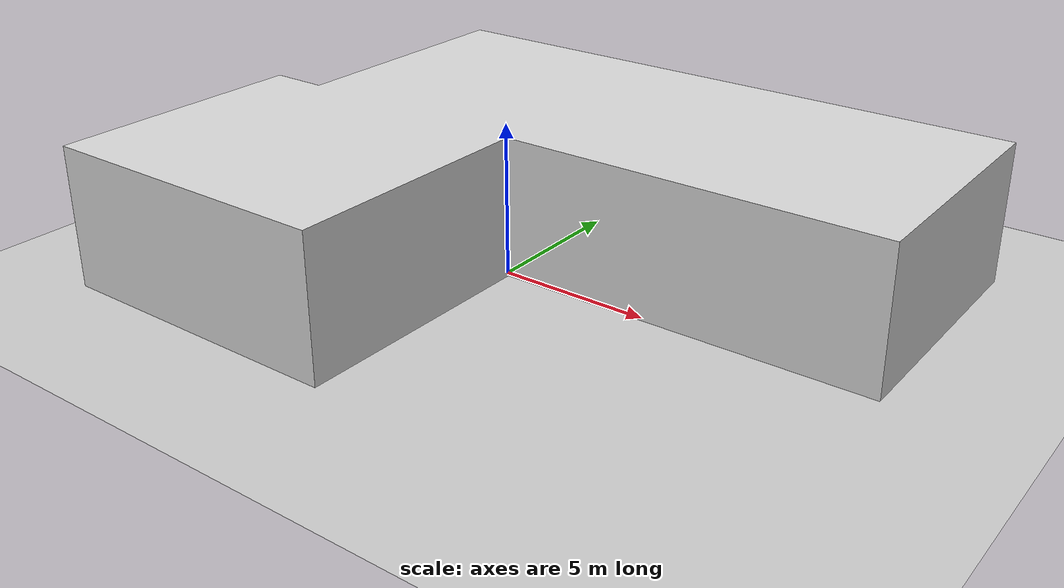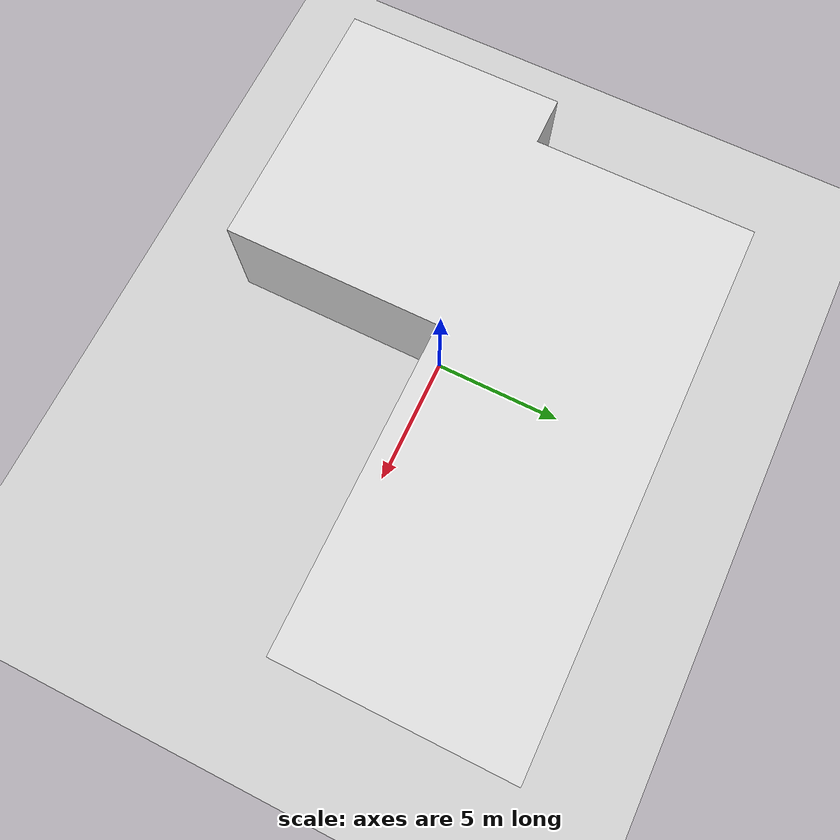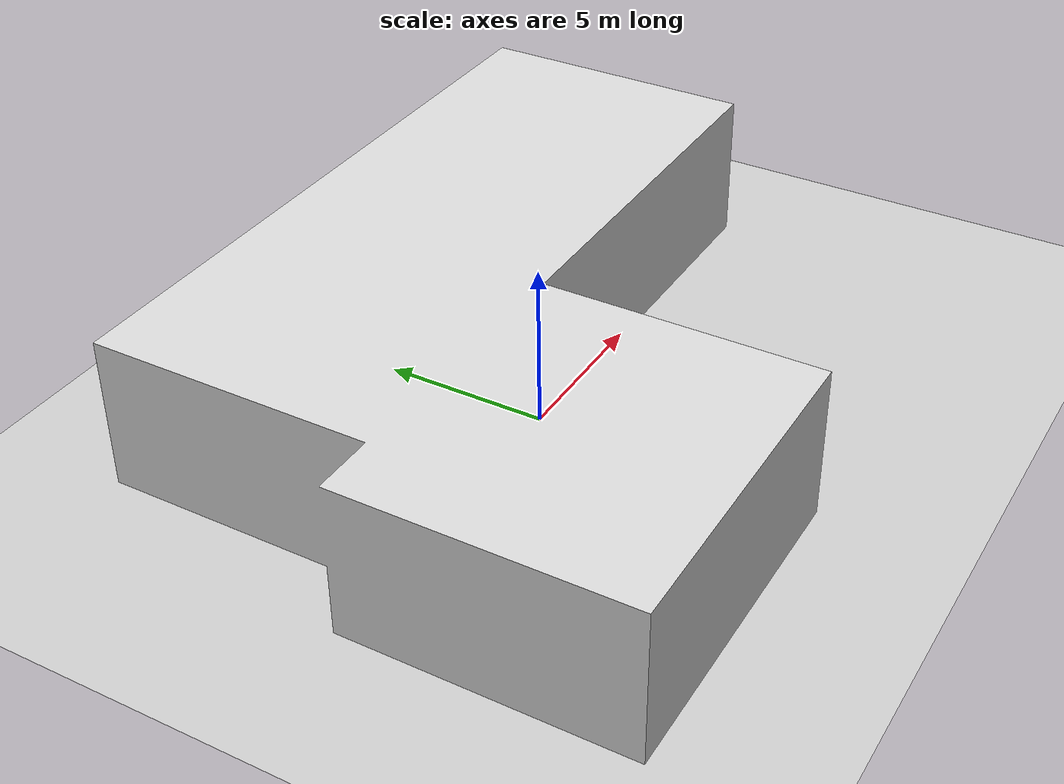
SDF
<sdf version="1.6">
 <world name="default">
  <light name="sun" type="directional">
   <pose>0 0 10 0 -0 0</pose>
   <diffuse>0.8 0.8 0.8 1</diffuse>
   <specular>0.2 0.2 0.2 1</specular>
   <attenuation>
    <range>1000</range>
    <constant>0.9</constant>
    <linear>0.01</linear>
    <quadratic>0.001</quadratic>
   </attenuation>
   <direction>-0.5 0.1 -0.9</direction>
   <spot><inner_angle>0</inner_angle><outer_angle>0</outer_angle><falloff>0</falloff></spot>
  </light>
  <model name="ground_plane">
   <static>1</static>
   <link name="link">
    <collision name="collision">
     <geometry><plane><normal>0 0 1</normal><size>100 100</size></plane></geometry>
     <surface>
      <contact><collide_bitmask>65535</collide_bitmask></contact>
      <friction><ode><mu>100</mu><mu2>50</mu2></ode></friction>
     </surface>
    </collision>
    <visual name="visual">
     <cast_shadows>0</cast_shadows>
     <geometry><plane><normal>0 0 1</normal><size>100 100</size></plane></geometry>
     <material>
      <script><uri>file://media/materials/scripts/gazebo.material</uri><name>Gazebo/Grey</name></script>
     </material>
    </visual>
   </link>
  </model>
  <gravity>0 0 -9.8</gravity>
  <magnetic_field>6e-06 2.3e-05 -4.2e-05</magnetic_field>
  <atmosphere type="adiabatic"/>
  <physics type="ode">
   <max_step_size>0.001</max_step_size>
   <real_time_factor>1</real_time_factor>
   <real_time_update_rate>1000</real_time_update_rate>
  </physics>
  <scene><ambient>0.4 0.4 0.4 1</ambient><background>0.7 0.7 0.7 1</background><shadows>1</shadows></scene>
  <spherical_coordinates>
   <surface_model>EARTH_WGS84</surface_model>
   <latitude_deg>0</latitude_deg>
   <longitude_deg>0</longitude_deg>
   <elevation>0</elevation>
   <heading_deg>0</heading_deg>
  </spherical_coordinates>
  <model name="FAR">
   <static>1</static>
   <link name="FAR">
    <collision name="lab_collision">
     <geometry><mesh><uri>model://FAR/meshes/FAR.stl</uri></mesh></geometry>
    </collision>
    <visual name="lab_visual">
     <geometry><mesh><uri>model://FAR/meshes/FAR.dae</uri></mesh></geometry>
     <material><script><uri>model://FAR/materials/materials.sdf</uri><name>LabMaterial</name></script></material>
    </visual>
   </link>
  </model>
  <model name="Obstacal">
   <static>1</static>
   <link name="base_link">
    <inertial>
     <pose>0.26 0.26 0.41 0 -0 0</pose>
     <mass>3.3896</mass>
     <inertia>
      <ixx>0.40359</ixx>
      <ixy>4.3299e-17</ixy>
      <ixz>8.3711e-17</ixz>
      <iyy>0.40359</iyy>
      <iyz>-4.3502e-17</iyz>
      <izz>0.25884</izz>
     </inertia>
    </inertial>
    <collision name="base_link_collision">
     <geometry><mesh><uri>model://obstacle_2/meshes/base_link.STL</uri></mesh></geometry>
    </collision>
    <visual name="base_link_visual">
     <geometry><mesh><uri>model://obstacle_2/meshes/base_link.dae</uri></mesh></geometry>
    </visual>
   </link>
   <pose>-4 3 0 0 -0 0</pose>
  </model>
  <model name="Obstacal_0">
   <static>1</static>
   <link name="base_link">
    <inertial>
     <pose>0.26 0.26 0.41 0 -0 0</pose>
     <mass>3.3896</mass>
     <inertia>
      <ixx>0.40359</ixx>
      <ixy>4.3299e-17</ixy>
      <ixz>8.3711e-17</ixz>
      <iyy>0.40359</iyy>
      <iyz>-4.3502e-17</iyz>
      <izz>0.25884</izz>
     </inertia>
    </inertial>
    <collision name="base_link_collision">
     <geometry><mesh><uri>model://obstacle_2/meshes/base_link.STL</uri></mesh></geometry>
    </collision>
    <visual name="base_link_visual">
     <geometry><mesh><uri>model://obstacle_2/meshes/base_link.dae</uri></mesh></geometry>
    </visual>
   </link>
   <pose>4.5 7 0 0 -0 0</pose>
  </model>
  <model name="Obstacal_1">
   <static>1</static>
   <link name="base_link">
    <inertial>
     <pose>0.26 0.26 0.41 0 -0 0</pose>
     <mass>3.3896</mass>
     <inertia>
      <ixx>0.40359</ixx>
      <ixy>4.3299e-17</ixy>
      <ixz>8.3711e-17</ixz>
      <iyy>0.40359</iyy>
      <iyz>-4.3502e-17</iyz>
      <izz>0.25884</izz>
     </inertia>
    </inertial>
    <collision name="base_link_collision">
     <geometry><mesh><uri>model://obstacle_2/meshes/base_link.STL</uri></mesh></geometry>
    </collision>
    <visual name="base_link_visual">
     <geometry><mesh><uri>model://obstacle_2/meshes/base_link.dae</uri></mesh></geometry>
    </visual>
   </link>
   <pose>4 1.5 0 0 -0 0</pose>
  </model>
  <model name="Obstacal_2">
   <static>1</static>
   <link name="base_link">
    <inertial>
     <pose>0.26 0.26 0.41 0 -0 0</pose>
     <mass>3.3896</mass>
     <inertia>
      <ixx>0.40359</ixx>
      <ixy>4.3299e-17</ixy>
      <ixz>8.3711e-17</ixz>
      <iyy>0.40359</iyy>
      <iyz>-4.3502e-17</iyz>
      <izz>0.25884</izz>
     </inertia>
    </inertial>
    <collision name="base_link_collision">
     <geometry><mesh><uri>model://obstacle_2/meshes/base_link.STL</uri></mesh></geometry>
    </collision>
    <visual name="base_link_visual">
     <geometry><mesh><uri>model://obstacle_2/meshes/base_link.dae</uri></mesh></geometry>
    </visual>
   </link>
   <pose>-5 -4 0 0 -0 0</pose>
  </model>
  <model name="Target">
   <static>1</static>
   <link name="target">
    <inertial>
     <pose>0 -0 0.2 0 -0 0</pose>
     <mass>565.15</mass>
     <inertia>
      <ixx>187.92</ixx>
      <ixy>1.3632e-14</ixy>
      <ixz>1.5708e-13</ixz>
      <iyy>546.66</iyy>
      <iyz>-1.4528e-14</iyz>
      <izz>373.81</izz>
     </inertia>
    </inertial>
    <collision name="Target_collision">
     <pose>0 0 0.1 0 -0 0</pose>
     <geometry><mesh><scale>1 1 1</scale><uri>model://target_2/meshes/Target.STL</uri></mesh></geometry>
    </collision>
    <visual name="Target_visual">
     <pose>0 0 0.1 0 -0 0</pose>
     <geometry><mesh><scale>1 1 1</scale><uri>model://target_2/meshes/Target.dae</uri></mesh></geometry>
    </visual>
   </link>
   <pose>-7.5 -4.5 0 0 -0 0</pose>
  </model>
 </world>
</sdf>
